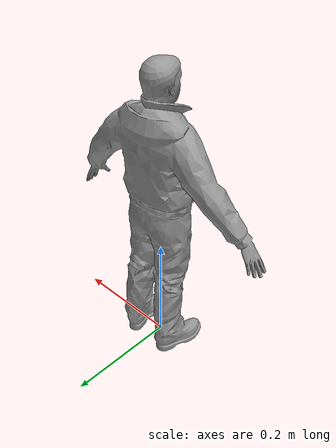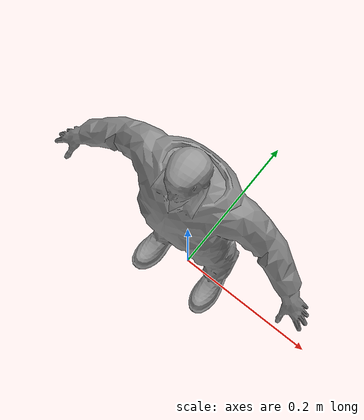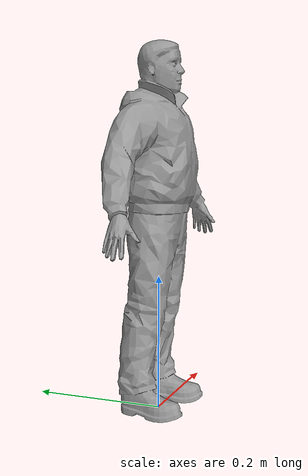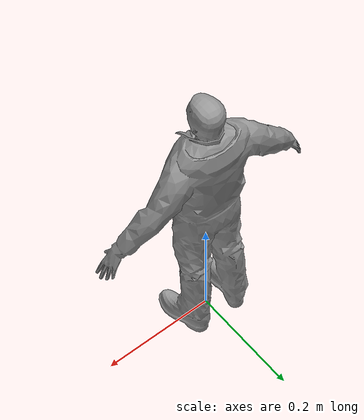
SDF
<?xml version="1.0" ?>
<sdf version="1.6">
  <model name="pedestrian_obstacle">
    <static>false</static>
    <allow_auto_disable>false</allow_auto_disable>
    <link name="body">
      <kinematic>true</kinematic>
      <gravity>false</gravity>
      <inertial>
        <mass>35.0</mass>
        <inertia>
          <ixx>1.0</ixx>
          <iyy>1.0</iyy>
          <izz>1.0</izz>
          <ixy>0.0</ixy>
          <ixz>0.0</ixz>
          <iyz>0.0</iyz>
        </inertia>
      </inertial>

      <collision name="collision">
        <pose>0 0 0.8 0 0 0</pose>
        <geometry>
          <cylinder>
            <radius>0.10</radius>
            <length>1.6</length>
          </cylinder>
        </geometry>
        <surface>
          <friction>
            <ode>
              <mu>0.0</mu>
              <mu2>0.0</mu2>
            </ode>
          </friction>
          <contact>
            <ode>
              <kp>1000000.0</kp>
              <kd>1.0</kd>
              <max_vel>0.1</max_vel>
              <min_depth>0.001</min_depth>
            </ode>
          </contact>
        </surface>
      </collision>

      <visual name="randy">
        <pose>0 0 0 0 0 0</pose>
        <geometry>
          <mesh>
            <uri>model://pedestrian_obstacle/meshes/rescue_randy.dae</uri>
            <scale>0.3 0.3 0.3</scale>
          </mesh>
        </geometry>
        <material>
          <script>
            <uri>model://pedestrian_obstacle/materials/scripts</uri>
            <uri>model://pedestrian_obstacle/materials/textures</uri>
            <name>RescueRandy/Diffuse</name>
          </script>
          <pbr>
            <metal>
              <albedo_map>model://pedestrian_obstacle/materials/textures/rescue_randy_albedo.png</albedo_map>
              <normal_map>model://pedestrian_obstacle/materials/textures/rescue_randy_normal.png</normal_map>
              <metalness_map>model://pedestrian_obstacle/materials/textures/rescue_randy_metalness.png</metalness_map>
              <roughness_map>model://pedestrian_obstacle/materials/textures/rescue_randy_roughness.png</roughness_map>
            </metal>
          </pbr>
        </material>
      </visual>
    </link>
  </model>
</sdf>
